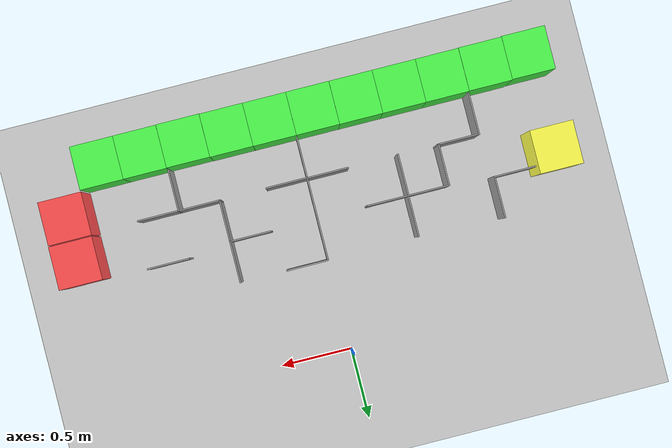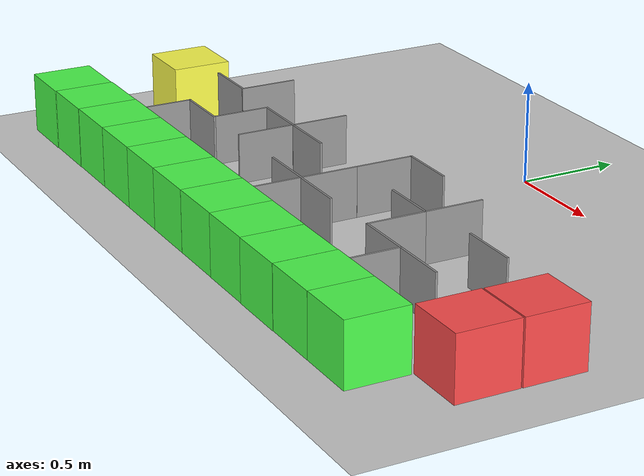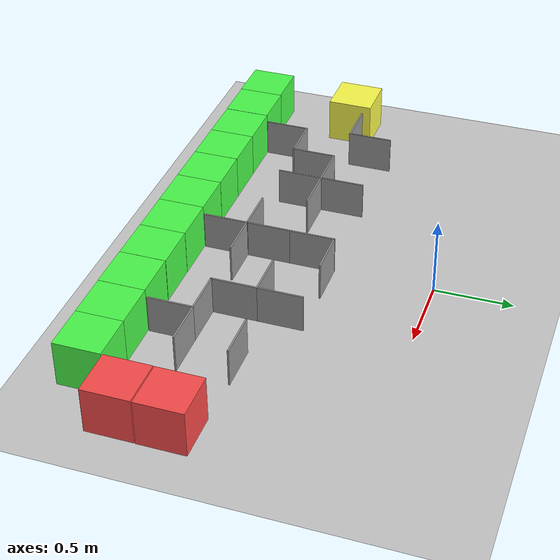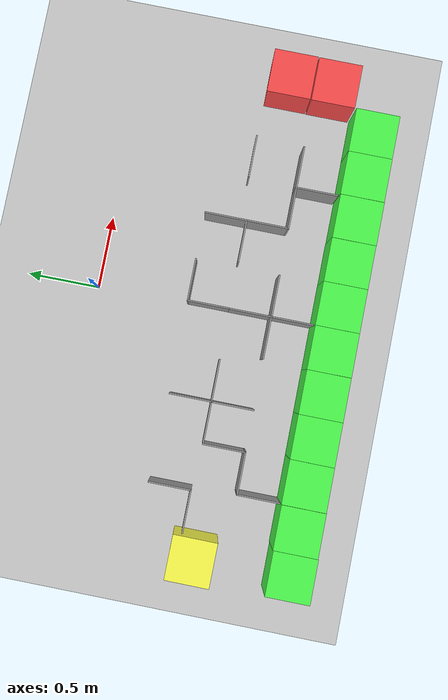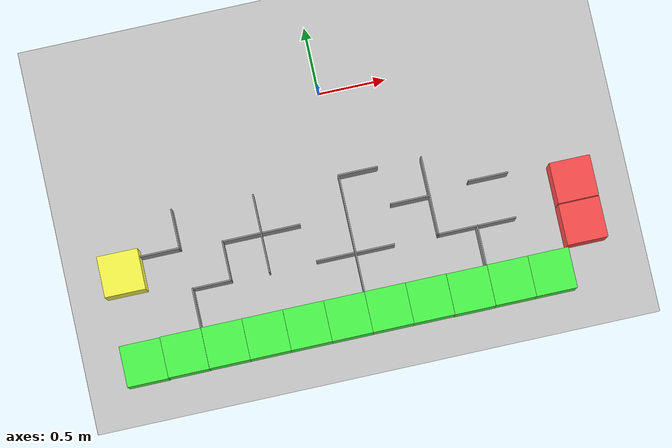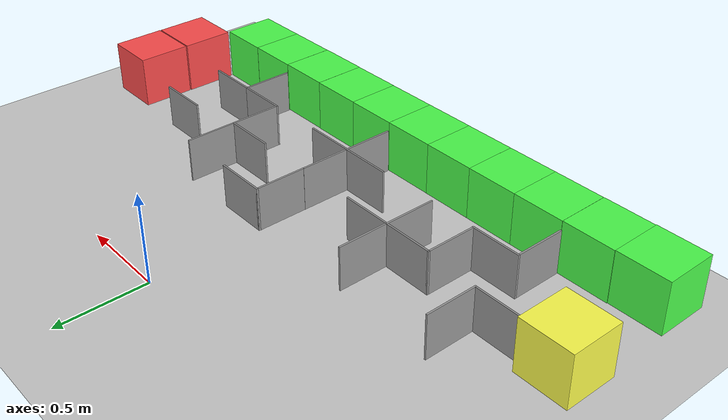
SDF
<sdf version="1.7">
 <world name="default">
  <model name="ground_plane">
   <static>1</static>
   <link name="link">
    <collision name="collision">
     <geometry><plane><normal>0 0 1</normal><size>100 100</size></plane></geometry>
     <surface><friction><ode><mu>100</mu><mu2>50</mu2></ode></friction></surface>
    </collision>
    <visual name="visual">
     <cast_shadows>0</cast_shadows>
     <geometry><plane><normal>0 0 1</normal><size>100 100</size></plane></geometry>
     <material>
      <script><uri>file://media/materials/scripts/gazebo.material</uri><name>Gazebo/Grey</name></script>
     </material>
    </visual>
   </link>
  </model>
  <model name="Box_Red_clone_6">
   <link name="link_0">
    <inertial>
     <mass>1</mass>
     <inertia>
      <ixx>0.166667</ixx>
      <ixy>0</ixy>
      <ixz>0</ixz>
      <iyy>0.166667</iyy>
      <iyz>0</iyz>
      <izz>0.166667</izz>
     </inertia>
    </inertial>
    <visual name="visual">
     <geometry><box><size>0.3 0.3 0.3</size></box></geometry>
     <material>
      <lighting>1</lighting>
      <script><uri>file://media/materials/scripts/gazebo.material</uri><name>Gazebo/Grey</name></script>
      <ambient>1 0.3 0.3 1</ambient>
      <diffuse>0.7 0.7 0.7 1</diffuse>
      <specular>0.01 0.01 0.01 1</specular>
      <emissive>0 0 0 1</emissive>
      <shader type="vertex"><normal_map>__default__</normal_map></shader>
     </material>
    </visual>
    <collision name="collision">
     <geometry><box><size>0.3 0.3 0.3</size></box></geometry>
     <surface>
      <friction>
       <ode><mu>1</mu><mu2>1</mu2><fdir1>0 0 0</fdir1><slip1>0</slip1><slip2>0</slip2></ode>
       <torsional>
        <coefficient>1</coefficient>
        <patch_radius>0</patch_radius>
        <surface_radius>0</surface_radius>
        <use_patch_radius>1</use_patch_radius>
        <ode><slip>0</slip></ode>
       </torsional>
      </friction>
      <bounce><restitution_coefficient>0</restitution_coefficient><threshold>1e+06</threshold></bounce>
      <contact>
       <collide_without_contact>0</collide_without_contact>
       <collide_without_contact_bitmask>1</collide_without_contact_bitmask>
       <collide_bitmask>1</collide_bitmask>
       <ode>
        <soft_cfm>0</soft_cfm>
        <soft_erp>0.2</soft_erp>
        <kp>1e+13</kp>
        <kd>1</kd>
        <max_vel>0.01</max_vel>
        <min_depth>0</min_depth>
       </ode>
       <bullet>
        <split_impulse>1</split_impulse>
        <split_impulse_penetration_threshold>-0.01</split_impulse_penetration_threshold>
        <soft_cfm>0</soft_cfm>
        <soft_erp>0.2</soft_erp>
        <kp>1e+13</kp>
        <kd>1</kd>
       </bullet>
      </contact>
     </surface>
    </collision>
   </link>
   <static>0</static>
   <pose>1.65902 -1.04031 0.15 0 -0 2.8e-05</pose>
  </model>
  <model name="Box_Red_clone_7">
   <link name="link_0">
    <inertial>
     <mass>1</mass>
     <inertia>
      <ixx>0.166667</ixx>
      <ixy>0</ixy>
      <ixz>0</ixz>
      <iyy>0.166667</iyy>
      <iyz>0</iyz>
      <izz>0.166667</izz>
     </inertia>
    </inertial>
    <visual name="visual">
     <geometry><box><size>0.3 0.3 0.3</size></box></geometry>
     <material>
      <lighting>1</lighting>
      <script><uri>file://media/materials/scripts/gazebo.material</uri><name>Gazebo/Grey</name></script>
      <ambient>1 0.3 0.3 1</ambient>
      <diffuse>0.7 0.7 0.7 1</diffuse>
      <specular>0.01 0.01 0.01 1</specular>
      <emissive>0 0 0 1</emissive>
      <shader type="vertex"><normal_map>__default__</normal_map></shader>
     </material>
    </visual>
    <collision name="collision">
     <geometry><box><size>0.3 0.3 0.3</size></box></geometry>
     <surface>
      <friction>
       <ode><mu>1</mu><mu2>1</mu2><fdir1>0 0 0</fdir1><slip1>0</slip1><slip2>0</slip2></ode>
       <torsional>
        <coefficient>1</coefficient>
        <patch_radius>0</patch_radius>
        <surface_radius>0</surface_radius>
        <use_patch_radius>1</use_patch_radius>
        <ode><slip>0</slip></ode>
       </torsional>
      </friction>
      <bounce><restitution_coefficient>0</restitution_coefficient><threshold>1e+06</threshold></bounce>
      <contact>
       <collide_without_contact>0</collide_without_contact>
       <collide_without_contact_bitmask>1</collide_without_contact_bitmask>
       <collide_bitmask>1</collide_bitmask>
       <ode>
        <soft_cfm>0</soft_cfm>
        <soft_erp>0.2</soft_erp>
        <kp>1e+13</kp>
        <kd>1</kd>
        <max_vel>0.01</max_vel>
        <min_depth>0</min_depth>
       </ode>
       <bullet>
        <split_impulse>1</split_impulse>
        <split_impulse_penetration_threshold>-0.01</split_impulse_penetration_threshold>
        <soft_cfm>0</soft_cfm>
        <soft_erp>0.2</soft_erp>
        <kp>1e+13</kp>
        <kd>1</kd>
       </bullet>
      </contact>
     </surface>
    </collision>
   </link>
   <static>0</static>
   <pose>1.65728 -1.34759 0.15 0 -0 3.8e-05</pose>
  </model>
  <model name="Box_Green">
   <link name="link_0">
    <inertial>
     <mass>1</mass>
     <inertia>
      <ixx>0.166667</ixx>
      <ixy>0</ixy>
      <ixz>0</ixz>
      <iyy>0.166667</iyy>
      <iyz>0</iyz>
      <izz>0.166667</izz>
     </inertia>
    </inertial>
    <visual name="visual">
     <geometry><box><size>0.3 0.3 0.3</size></box></geometry>
     <material>
      <lighting>1</lighting>
      <script><uri>file://media/materials/scripts/gazebo.material</uri><name>Gazebo/Grey</name></script>
      <ambient>0.3 1 0.3 1</ambient>
      <diffuse>0.7 0.7 0.7 1</diffuse>
      <specular>0.01 0.01 0.01 1</specular>
      <emissive>0 0 0 1</emissive>
      <shader type="vertex"><normal_map>__default__</normal_map></shader>
     </material>
    </visual>
    <collision name="collision">
     <geometry><box><size>0.3 0.3 0.3</size></box></geometry>
     <surface>
      <friction>
       <ode><mu>1</mu><mu2>1</mu2><fdir1>0 0 0</fdir1><slip1>0</slip1><slip2>0</slip2></ode>
       <torsional>
        <coefficient>1</coefficient>
        <patch_radius>0</patch_radius>
        <surface_radius>0</surface_radius>
        <use_patch_radius>1</use_patch_radius>
        <ode><slip>0</slip></ode>
       </torsional>
      </friction>
      <bounce><restitution_coefficient>0</restitution_coefficient><threshold>1e+06</threshold></bounce>
      <contact>
       <collide_without_contact>0</collide_without_contact>
       <collide_without_contact_bitmask>1</collide_without_contact_bitmask>
       <collide_bitmask>1</collide_bitmask>
       <ode>
        <soft_cfm>0</soft_cfm>
        <soft_erp>0.2</soft_erp>
        <kp>1e+13</kp>
        <kd>1</kd>
        <max_vel>0.01</max_vel>
        <min_depth>0</min_depth>
       </ode>
       <bullet>
        <split_impulse>1</split_impulse>
        <split_impulse_penetration_threshold>-0.01</split_impulse_penetration_threshold>
        <soft_cfm>0</soft_cfm>
        <soft_erp>0.2</soft_erp>
        <kp>1e+13</kp>
        <kd>1</kd>
       </bullet>
      </contact>
     </surface>
    </collision>
   </link>
   <static>0</static>
   <pose>1.36008 -1.65861 0.15 0 -0 -0.000208</pose>
  </model>
  <model name="Box_Green_clone">
   <link name="link_0">
    <inertial>
     <mass>1</mass>
     <inertia>
      <ixx>0.166667</ixx>
      <ixy>0</ixy>
      <ixz>0</ixz>
      <iyy>0.166667</iyy>
      <iyz>0</iyz>
      <izz>0.166667</izz>
     </inertia>
    </inertial>
    <visual name="visual">
     <geometry><box><size>0.3 0.3 0.3</size></box></geometry>
     <material>
      <lighting>1</lighting>
      <script><uri>file://media/materials/scripts/gazebo.material</uri><name>Gazebo/Grey</name></script>
      <ambient>0.3 1 0.3 1</ambient>
      <diffuse>0.7 0.7 0.7 1</diffuse>
      <specular>0.01 0.01 0.01 1</specular>
      <emissive>0 0 0 1</emissive>
      <shader type="vertex"><normal_map>__default__</normal_map></shader>
     </material>
    </visual>
    <collision name="collision">
     <geometry><box><size>0.3 0.3 0.3</size></box></geometry>
     <surface>
      <friction>
       <ode><mu>1</mu><mu2>1</mu2><fdir1>0 0 0</fdir1><slip1>0</slip1><slip2>0</slip2></ode>
       <torsional>
        <coefficient>1</coefficient>
        <patch_radius>0</patch_radius>
        <surface_radius>0</surface_radius>
        <use_patch_radius>1</use_patch_radius>
        <ode><slip>0</slip></ode>
       </torsional>
      </friction>
      <bounce><restitution_coefficient>0</restitution_coefficient><threshold>1e+06</threshold></bounce>
      <contact>
       <collide_without_contact>0</collide_without_contact>
       <collide_without_contact_bitmask>1</collide_without_contact_bitmask>
       <collide_bitmask>1</collide_bitmask>
       <ode>
        <soft_cfm>0</soft_cfm>
        <soft_erp>0.2</soft_erp>
        <kp>1e+13</kp>
        <kd>1</kd>
        <max_vel>0.01</max_vel>
        <min_depth>0</min_depth>
       </ode>
       <bullet>
        <split_impulse>1</split_impulse>
        <split_impulse_penetration_threshold>-0.01</split_impulse_penetration_threshold>
        <soft_cfm>0</soft_cfm>
        <soft_erp>0.2</soft_erp>
        <kp>1e+13</kp>
        <kd>1</kd>
       </bullet>
      </contact>
     </surface>
    </collision>
   </link>
   <static>0</static>
   <pose>1.06007 -1.65905 0.15 0 -0 -0.000217</pose>
  </model>
  <model name="Box_Green_clone_0">
   <link name="link_0">
    <inertial>
     <mass>1</mass>
     <inertia>
      <ixx>0.166667</ixx>
      <ixy>0</ixy>
      <ixz>0</ixz>
      <iyy>0.166667</iyy>
      <iyz>0</iyz>
      <izz>0.166667</izz>
     </inertia>
    </inertial>
    <visual name="visual">
     <geometry><box><size>0.3 0.3 0.3</size></box></geometry>
     <material>
      <lighting>1</lighting>
      <script><uri>file://media/materials/scripts/gazebo.material</uri><name>Gazebo/Grey</name></script>
      <ambient>0.3 1 0.3 1</ambient>
      <diffuse>0.7 0.7 0.7 1</diffuse>
      <specular>0.01 0.01 0.01 1</specular>
      <emissive>0 0 0 1</emissive>
      <shader type="vertex"><normal_map>__default__</normal_map></shader>
     </material>
    </visual>
    <collision name="collision">
     <geometry><box><size>0.3 0.3 0.3</size></box></geometry>
     <surface>
      <friction>
       <ode><mu>1</mu><mu2>1</mu2><fdir1>0 0 0</fdir1><slip1>0</slip1><slip2>0</slip2></ode>
       <torsional>
        <coefficient>1</coefficient>
        <patch_radius>0</patch_radius>
        <surface_radius>0</surface_radius>
        <use_patch_radius>1</use_patch_radius>
        <ode><slip>0</slip></ode>
       </torsional>
      </friction>
      <bounce><restitution_coefficient>0</restitution_coefficient><threshold>1e+06</threshold></bounce>
      <contact>
       <collide_without_contact>0</collide_without_contact>
       <collide_without_contact_bitmask>1</collide_without_contact_bitmask>
       <collide_bitmask>1</collide_bitmask>
       <ode>
        <soft_cfm>0</soft_cfm>
        <soft_erp>0.2</soft_erp>
        <kp>1e+13</kp>
        <kd>1</kd>
        <max_vel>0.01</max_vel>
        <min_depth>0</min_depth>
       </ode>
       <bullet>
        <split_impulse>1</split_impulse>
        <split_impulse_penetration_threshold>-0.01</split_impulse_penetration_threshold>
        <soft_cfm>0</soft_cfm>
        <soft_erp>0.2</soft_erp>
        <kp>1e+13</kp>
        <kd>1</kd>
       </bullet>
      </contact>
     </surface>
    </collision>
   </link>
   <static>0</static>
   <pose>0.759846 -1.66047 0.15 0 -0 -0.001702</pose>
  </model>
  <model name="Box_Green_clone_1">
   <link name="link_0">
    <inertial>
     <mass>1</mass>
     <inertia>
      <ixx>0.166667</ixx>
      <ixy>0</ixy>
      <ixz>0</ixz>
      <iyy>0.166667</iyy>
      <iyz>0</iyz>
      <izz>0.166667</izz>
     </inertia>
    </inertial>
    <visual name="visual">
     <geometry><box><size>0.3 0.3 0.3</size></box></geometry>
     <material>
      <lighting>1</lighting>
      <script><uri>file://media/materials/scripts/gazebo.material</uri><name>Gazebo/Grey</name></script>
      <ambient>0.3 1 0.3 1</ambient>
      <diffuse>0.7 0.7 0.7 1</diffuse>
      <specular>0.01 0.01 0.01 1</specular>
      <emissive>0 0 0 1</emissive>
      <shader type="vertex"><normal_map>__default__</normal_map></shader>
     </material>
    </visual>
    <collision name="collision">
     <geometry><box><size>0.3 0.3 0.3</size></box></geometry>
     <surface>
      <friction>
       <ode><mu>1</mu><mu2>1</mu2><fdir1>0 0 0</fdir1><slip1>0</slip1><slip2>0</slip2></ode>
       <torsional>
        <coefficient>1</coefficient>
        <patch_radius>0</patch_radius>
        <surface_radius>0</surface_radius>
        <use_patch_radius>1</use_patch_radius>
        <ode><slip>0</slip></ode>
       </torsional>
      </friction>
      <bounce><restitution_coefficient>0</restitution_coefficient><threshold>1e+06</threshold></bounce>
      <contact>
       <collide_without_contact>0</collide_without_contact>
       <collide_without_contact_bitmask>1</collide_without_contact_bitmask>
       <collide_bitmask>1</collide_bitmask>
       <ode>
        <soft_cfm>0</soft_cfm>
        <soft_erp>0.2</soft_erp>
        <kp>1e+13</kp>
        <kd>1</kd>
        <max_vel>0.01</max_vel>
        <min_depth>0</min_depth>
       </ode>
       <bullet>
        <split_impulse>1</split_impulse>
        <split_impulse_penetration_threshold>-0.01</split_impulse_penetration_threshold>
        <soft_cfm>0</soft_cfm>
        <soft_erp>0.2</soft_erp>
        <kp>1e+13</kp>
        <kd>1</kd>
       </bullet>
      </contact>
     </surface>
    </collision>
   </link>
   <static>0</static>
   <pose>0.459596 -1.6585 0.15 0 -0 -4.3e-05</pose>
  </model>
  <model name="Box_Green_clone_2">
   <link name="link_0">
    <inertial>
     <mass>1</mass>
     <inertia>
      <ixx>0.166667</ixx>
      <ixy>0</ixy>
      <ixz>0</ixz>
      <iyy>0.166667</iyy>
      <iyz>0</iyz>
      <izz>0.166667</izz>
     </inertia>
    </inertial>
    <visual name="visual">
     <geometry><box><size>0.3 0.3 0.3</size></box></geometry>
     <material>
      <lighting>1</lighting>
      <script><uri>file://media/materials/scripts/gazebo.material</uri><name>Gazebo/Grey</name></script>
      <ambient>0.3 1 0.3 1</ambient>
      <diffuse>0.7 0.7 0.7 1</diffuse>
      <specular>0.01 0.01 0.01 1</specular>
      <emissive>0 0 0 1</emissive>
      <shader type="vertex"><normal_map>__default__</normal_map></shader>
     </material>
    </visual>
    <collision name="collision">
     <geometry><box><size>0.3 0.3 0.3</size></box></geometry>
     <surface>
      <friction>
       <ode><mu>1</mu><mu2>1</mu2><fdir1>0 0 0</fdir1><slip1>0</slip1><slip2>0</slip2></ode>
       <torsional>
        <coefficient>1</coefficient>
        <patch_radius>0</patch_radius>
        <surface_radius>0</surface_radius>
        <use_patch_radius>1</use_patch_radius>
        <ode><slip>0</slip></ode>
       </torsional>
      </friction>
      <bounce><restitution_coefficient>0</restitution_coefficient><threshold>1e+06</threshold></bounce>
      <contact>
       <collide_without_contact>0</collide_without_contact>
       <collide_without_contact_bitmask>1</collide_without_contact_bitmask>
       <collide_bitmask>1</collide_bitmask>
       <ode>
        <soft_cfm>0</soft_cfm>
        <soft_erp>0.2</soft_erp>
        <kp>1e+13</kp>
        <kd>1</kd>
        <max_vel>0.01</max_vel>
        <min_depth>0</min_depth>
       </ode>
       <bullet>
        <split_impulse>1</split_impulse>
        <split_impulse_penetration_threshold>-0.01</split_impulse_penetration_threshold>
        <soft_cfm>0</soft_cfm>
        <soft_erp>0.2</soft_erp>
        <kp>1e+13</kp>
        <kd>1</kd>
       </bullet>
      </contact>
     </surface>
    </collision>
   </link>
   <static>0</static>
   <pose>0.159573 -1.6577 0.15 0 -0 8.4e-05</pose>
  </model>
  <model name="Box_Green_clone_3">
   <link name="link_0">
    <inertial>
     <mass>1</mass>
     <inertia>
      <ixx>0.166667</ixx>
      <ixy>0</ixy>
      <ixz>0</ixz>
      <iyy>0.166667</iyy>
      <iyz>0</iyz>
      <izz>0.166667</izz>
     </inertia>
    </inertial>
    <visual name="visual">
     <geometry><box><size>0.3 0.3 0.3</size></box></geometry>
     <material>
      <lighting>1</lighting>
      <script><uri>file://media/materials/scripts/gazebo.material</uri><name>Gazebo/Grey</name></script>
      <ambient>0.3 1 0.3 1</ambient>
      <diffuse>0.7 0.7 0.7 1</diffuse>
      <specular>0.01 0.01 0.01 1</specular>
      <emissive>0 0 0 1</emissive>
      <shader type="vertex"><normal_map>__default__</normal_map></shader>
     </material>
    </visual>
    <collision name="collision">
     <geometry><box><size>0.3 0.3 0.3</size></box></geometry>
     <surface>
      <friction>
       <ode><mu>1</mu><mu2>1</mu2><fdir1>0 0 0</fdir1><slip1>0</slip1><slip2>0</slip2></ode>
       <torsional>
        <coefficient>1</coefficient>
        <patch_radius>0</patch_radius>
        <surface_radius>0</surface_radius>
        <use_patch_radius>1</use_patch_radius>
        <ode><slip>0</slip></ode>
       </torsional>
      </friction>
      <bounce><restitution_coefficient>0</restitution_coefficient><threshold>1e+06</threshold></bounce>
      <contact>
       <collide_without_contact>0</collide_without_contact>
       <collide_without_contact_bitmask>1</collide_without_contact_bitmask>
       <collide_bitmask>1</collide_bitmask>
       <ode>
        <soft_cfm>0</soft_cfm>
        <soft_erp>0.2</soft_erp>
        <kp>1e+13</kp>
        <kd>1</kd>
        <max_vel>0.01</max_vel>
        <min_depth>0</min_depth>
       </ode>
       <bullet>
        <split_impulse>1</split_impulse>
        <split_impulse_penetration_threshold>-0.01</split_impulse_penetration_threshold>
        <soft_cfm>0</soft_cfm>
        <soft_erp>0.2</soft_erp>
        <kp>1e+13</kp>
        <kd>1</kd>
       </bullet>
      </contact>
     </surface>
    </collision>
   </link>
   <static>0</static>
   <pose>-0.140486 -1.65805 0.15 0 -0 0.000451</pose>
  </model>
  <model name="Box_Green_clone_4">
   <link name="link_0">
    <inertial>
     <mass>1</mass>
     <inertia>
      <ixx>0.166667</ixx>
      <ixy>0</ixy>
      <ixz>0</ixz>
      <iyy>0.166667</iyy>
      <iyz>0</iyz>
      <izz>0.166667</izz>
     </inertia>
    </inertial>
    <visual name="visual">
     <geometry><box><size>0.3 0.3 0.3</size></box></geometry>
     <material>
      <lighting>1</lighting>
      <script><uri>file://media/materials/scripts/gazebo.material</uri><name>Gazebo/Grey</name></script>
      <ambient>0.3 1 0.3 1</ambient>
      <diffuse>0.7 0.7 0.7 1</diffuse>
      <specular>0.01 0.01 0.01 1</specular>
      <emissive>0 0 0 1</emissive>
      <shader type="vertex"><normal_map>__default__</normal_map></shader>
     </material>
    </visual>
    <collision name="collision">
     <geometry><box><size>0.3 0.3 0.3</size></box></geometry>
     <surface>
      <friction>
       <ode><mu>1</mu><mu2>1</mu2><fdir1>0 0 0</fdir1><slip1>0</slip1><slip2>0</slip2></ode>
       <torsional>
        <coefficient>1</coefficient>
        <patch_radius>0</patch_radius>
        <surface_radius>0</surface_radius>
        <use_patch_radius>1</use_patch_radius>
        <ode><slip>0</slip></ode>
       </torsional>
      </friction>
      <bounce><restitution_coefficient>0</restitution_coefficient><threshold>1e+06</threshold></bounce>
      <contact>
       <collide_without_contact>0</collide_without_contact>
       <collide_without_contact_bitmask>1</collide_without_contact_bitmask>
       <collide_bitmask>1</collide_bitmask>
       <ode>
        <soft_cfm>0</soft_cfm>
        <soft_erp>0.2</soft_erp>
        <kp>1e+13</kp>
        <kd>1</kd>
        <max_vel>0.01</max_vel>
        <min_depth>0</min_depth>
       </ode>
       <bullet>
        <split_impulse>1</split_impulse>
        <split_impulse_penetration_threshold>-0.01</split_impulse_penetration_threshold>
        <soft_cfm>0</soft_cfm>
        <soft_erp>0.2</soft_erp>
        <kp>1e+13</kp>
        <kd>1</kd>
       </bullet>
      </contact>
     </surface>
    </collision>
   </link>
   <static>0</static>
   <pose>-0.440564 -1.65767 0.15 0 -0 1e-05</pose>
  </model>
  <model name="Box_Green_clone_5">
   <link name="link_0">
    <inertial>
     <mass>1</mass>
     <inertia>
      <ixx>0.166667</ixx>
      <ixy>0</ixy>
      <ixz>0</ixz>
      <iyy>0.166667</iyy>
      <iyz>0</iyz>
      <izz>0.166667</izz>
     </inertia>
    </inertial>
    <visual name="visual">
     <geometry><box><size>0.3 0.3 0.3</size></box></geometry>
     <material>
      <lighting>1</lighting>
      <script><uri>file://media/materials/scripts/gazebo.material</uri><name>Gazebo/Grey</name></script>
      <ambient>0.3 1 0.3 1</ambient>
      <diffuse>0.7 0.7 0.7 1</diffuse>
      <specular>0.01 0.01 0.01 1</specular>
      <emissive>0 0 0 1</emissive>
      <shader type="vertex"><normal_map>__default__</normal_map></shader>
     </material>
    </visual>
    <collision name="collision">
     <geometry><box><size>0.3 0.3 0.3</size></box></geometry>
     <surface>
      <friction>
       <ode><mu>1</mu><mu2>1</mu2><fdir1>0 0 0</fdir1><slip1>0</slip1><slip2>0</slip2></ode>
       <torsional>
        <coefficient>1</coefficient>
        <patch_radius>0</patch_radius>
        <surface_radius>0</surface_radius>
        <use_patch_radius>1</use_patch_radius>
        <ode><slip>0</slip></ode>
       </torsional>
      </friction>
      <bounce><restitution_coefficient>0</restitution_coefficient><threshold>1e+06</threshold></bounce>
      <contact>
       <collide_without_contact>0</collide_without_contact>
       <collide_without_contact_bitmask>1</collide_without_contact_bitmask>
       <collide_bitmask>1</collide_bitmask>
       <ode>
        <soft_cfm>0</soft_cfm>
        <soft_erp>0.2</soft_erp>
        <kp>1e+13</kp>
        <kd>1</kd>
        <max_vel>0.01</max_vel>
        <min_depth>0</min_depth>
       </ode>
       <bullet>
        <split_impulse>1</split_impulse>
        <split_impulse_penetration_threshold>-0.01</split_impulse_penetration_threshold>
        <soft_cfm>0</soft_cfm>
        <soft_erp>0.2</soft_erp>
        <kp>1e+13</kp>
        <kd>1</kd>
       </bullet>
      </contact>
     </surface>
    </collision>
   </link>
   <static>0</static>
   <pose>-0.740618 -1.65773 0.15 0 -0 0.000345</pose>
  </model>
  <model name="Box_Green_clone_6">
   <link name="link_0">
    <inertial>
     <mass>1</mass>
     <inertia>
      <ixx>0.166667</ixx>
      <ixy>0</ixy>
      <ixz>0</ixz>
      <iyy>0.166667</iyy>
      <iyz>0</iyz>
      <izz>0.166667</izz>
     </inertia>
    </inertial>
    <visual name="visual">
     <geometry><box><size>0.3 0.3 0.3</size></box></geometry>
     <material>
      <lighting>1</lighting>
      <script><uri>file://media/materials/scripts/gazebo.material</uri><name>Gazebo/Grey</name></script>
      <ambient>0.3 1 0.3 1</ambient>
      <diffuse>0.7 0.7 0.7 1</diffuse>
      <specular>0.01 0.01 0.01 1</specular>
      <emissive>0 0 0 1</emissive>
      <shader type="vertex"><normal_map>__default__</normal_map></shader>
     </material>
    </visual>
    <collision name="collision">
     <geometry><box><size>0.3 0.3 0.3</size></box></geometry>
     <surface>
      <friction>
       <ode><mu>1</mu><mu2>1</mu2><fdir1>0 0 0</fdir1><slip1>0</slip1><slip2>0</slip2></ode>
       <torsional>
        <coefficient>1</coefficient>
        <patch_radius>0</patch_radius>
        <surface_radius>0</surface_radius>
        <use_patch_radius>1</use_patch_radius>
        <ode><slip>0</slip></ode>
       </torsional>
      </friction>
      <bounce><restitution_coefficient>0</restitution_coefficient><threshold>1e+06</threshold></bounce>
      <contact>
       <collide_without_contact>0</collide_without_contact>
       <collide_without_contact_bitmask>1</collide_without_contact_bitmask>
       <collide_bitmask>1</collide_bitmask>
       <ode>
        <soft_cfm>0</soft_cfm>
        <soft_erp>0.2</soft_erp>
        <kp>1e+13</kp>
        <kd>1</kd>
        <max_vel>0.01</max_vel>
        <min_depth>0</min_depth>
       </ode>
       <bullet>
        <split_impulse>1</split_impulse>
        <split_impulse_penetration_threshold>-0.01</split_impulse_penetration_threshold>
        <soft_cfm>0</soft_cfm>
        <soft_erp>0.2</soft_erp>
        <kp>1e+13</kp>
        <kd>1</kd>
       </bullet>
      </contact>
     </surface>
    </collision>
   </link>
   <static>0</static>
   <pose>-1.04062 -1.65808 0.15 0 -0 0.000344</pose>
  </model>
  <model name="Box_Green_clone_7">
   <link name="link_0">
    <inertial>
     <mass>1</mass>
     <inertia>
      <ixx>0.166667</ixx>
      <ixy>0</ixy>
      <ixz>0</ixz>
      <iyy>0.166667</iyy>
      <iyz>0</iyz>
      <izz>0.166667</izz>
     </inertia>
    </inertial>
    <visual name="visual">
     <geometry><box><size>0.3 0.3 0.3</size></box></geometry>
     <material>
      <lighting>1</lighting>
      <script><uri>file://media/materials/scripts/gazebo.material</uri><name>Gazebo/Grey</name></script>
      <ambient>0.3 1 0.3 1</ambient>
      <diffuse>0.7 0.7 0.7 1</diffuse>
      <specular>0.01 0.01 0.01 1</specular>
      <emissive>0 0 0 1</emissive>
      <shader type="vertex"><normal_map>__default__</normal_map></shader>
     </material>
    </visual>
    <collision name="collision">
     <geometry><box><size>0.3 0.3 0.3</size></box></geometry>
     <surface>
      <friction>
       <ode><mu>1</mu><mu2>1</mu2><fdir1>0 0 0</fdir1><slip1>0</slip1><slip2>0</slip2></ode>
       <torsional>
        <coefficient>1</coefficient>
        <patch_radius>0</patch_radius>
        <surface_radius>0</surface_radius>
        <use_patch_radius>1</use_patch_radius>
        <ode><slip>0</slip></ode>
       </torsional>
      </friction>
      <bounce><restitution_coefficient>0</restitution_coefficient><threshold>1e+06</threshold></bounce>
      <contact>
       <collide_without_contact>0</collide_without_contact>
       <collide_without_contact_bitmask>1</collide_without_contact_bitmask>
       <collide_bitmask>1</collide_bitmask>
       <ode>
        <soft_cfm>0</soft_cfm>
        <soft_erp>0.2</soft_erp>
        <kp>1e+13</kp>
        <kd>1</kd>
        <max_vel>0.01</max_vel>
        <min_depth>0</min_depth>
       </ode>
       <bullet>
        <split_impulse>1</split_impulse>
        <split_impulse_penetration_threshold>-0.01</split_impulse_penetration_threshold>
        <soft_cfm>0</soft_cfm>
        <soft_erp>0.2</soft_erp>
        <kp>1e+13</kp>
        <kd>1</kd>
       </bullet>
      </contact>
     </surface>
    </collision>
   </link>
   <static>0</static>
   <pose>-1.34114 -1.65973 0.15 -0 -0 -0.00019</pose>
  </model>
  <model name="Maze_L_RU">
   <pose>-1.36417 -0.767498 0 0 -0 0</pose>
   <link name="Wall_11">
    <collision name="Wall_11_Collision">
     <geometry><box><size>0.294 0.01 0.25</size></box></geometry>
     <pose>0 0 0.125 0 -0 0</pose>
    </collision>
    <visual name="Wall_11_Visual">
     <pose>0 0 0.125 0 -0 0</pose>
     <geometry><box><size>0.294 0.01 0.25</size></box></geometry>
     <material>
      <script><uri>file://media/materials/scripts/gazebo.material</uri><name>Gazebo/Grey</name></script>
      <ambient>1 1 1 1</ambient>
     </material>
     <meta><layer>0</layer></meta>
    </visual>
    <pose>0 -0.142 0 0 -0 0</pose>
   </link>
   <link name="Wall_12">
    <collision name="Wall_12_Collision">
     <geometry><box><size>0.294 0.01 0.25</size></box></geometry>
     <pose>0 0 0.125 0 -0 0</pose>
    </collision>
    <visual name="Wall_12_Visual">
     <pose>0 0 0.125 0 -0 0</pose>
     <geometry><box><size>0.294 0.01 0.25</size></box></geometry>
     <material>
      <script><uri>file://media/materials/scripts/gazebo.material</uri><name>Gazebo/Grey</name></script>
      <ambient>1 1 1 1</ambient>
     </material>
     <meta><layer>0</layer></meta>
    </visual>
    <pose>0.142 0 0 0 -0 1.5708</pose>
   </link>
   <static>1</static>
  </model>
  <model name="Maze_I_V_clone">
   <pose>1.06361 -0.883251 0 0 -0 0</pose>
   <link name="Wall_0">
    <collision name="Wall_0_Collision">
     <geometry><box><size>0.294 0.01 0.25</size></box></geometry>
     <pose>0 0 0.125 0 -0 0</pose>
    </collision>
    <visual name="Wall_0_Visual">
     <pose>0 0 0.125 0 -0 0</pose>
     <geometry><box><size>0.294 0.01 0.25</size></box></geometry>
     <material>
      <script><uri>file://media/materials/scripts/gazebo.material</uri><name>Gazebo/Grey</name></script>
      <ambient>1 1 1 1</ambient>
     </material>
     <meta><layer>0</layer></meta>
    </visual>
   </link>
   <static>1</static>
  </model>
  <model name="Maze_L_LB_clone_2">
   <pose>1.04986 -1.35673 0 0 -0 0</pose>
   <link name="Wall_0">
    <collision name="Wall_0_Collision">
     <geometry><box><size>0.294 0.01 0.25</size></box></geometry>
     <pose>0 0 0.125 0 -0 0</pose>
    </collision>
    <visual name="Wall_0_Visual">
     <pose>0 0 0.125 0 -0 0</pose>
     <geometry><box><size>0.294 0.01 0.25</size></box></geometry>
     <material>
      <script><uri>file://media/materials/scripts/gazebo.material</uri><name>Gazebo/Grey</name></script>
      <ambient>1 1 1 1</ambient>
     </material>
     <meta><layer>0</layer></meta>
    </visual>
    <pose>0 0.142 0 0 -0 0</pose>
   </link>
   <link name="Wall_2">
    <collision name="Wall_2_Collision">
     <geometry><box><size>0.294 0.01 0.25</size></box></geometry>
     <pose>0 0 0.125 0 -0 0</pose>
    </collision>
    <visual name="Wall_2_Visual">
     <pose>0 0 0.125 0 -0 0</pose>
     <geometry><box><size>0.294 0.01 0.25</size></box></geometry>
     <material>
      <script><uri>file://media/materials/scripts/gazebo.material</uri><name>Gazebo/Grey</name></script>
      <ambient>1 1 1 1</ambient>
     </material>
     <meta><layer>0</layer></meta>
    </visual>
    <pose>-0.142 0 0 0 0 -1.5708</pose>
   </link>
   <static>1</static>
  </model>
  <model name="Maze_L_RB_clone_2">
   <pose>0.763598 -1.0726 0 0 -0 0</pose>
   <link name="Wall_0">
    <collision name="Wall_0_Collision">
     <geometry><box><size>0.294 0.01 0.25</size></box></geometry>
     <pose>0 0 0.125 0 -0 0</pose>
    </collision>
    <visual name="Wall_0_Visual">
     <pose>0 0 0.125 0 -0 0</pose>
     <geometry><box><size>0.294 0.01 0.25</size></box></geometry>
     <material>
      <script><uri>file://media/materials/scripts/gazebo.material</uri><name>Gazebo/Grey</name></script>
      <ambient>1 1 1 1</ambient>
     </material>
     <meta><layer>0</layer></meta>
    </visual>
    <pose>0 -0.142 0 0 -0 0</pose>
   </link>
   <link name="Wall_2">
    <collision name="Wall_2_Collision">
     <geometry><box><size>0.294 0.01 0.25</size></box></geometry>
     <pose>0 0 0.125 0 -0 0</pose>
    </collision>
    <visual name="Wall_2_Visual">
     <pose>0 0 0.125 0 -0 0</pose>
     <geometry><box><size>0.294 0.01 0.25</size></box></geometry>
     <material>
      <script><uri>file://media/materials/scripts/gazebo.material</uri><name>Gazebo/Grey</name></script>
      <ambient>1 1 1 1</ambient>
     </material>
     <meta><layer>0</layer></meta>
    </visual>
    <pose>-0.142 0 0 0 -0 1.5708</pose>
   </link>
   <static>1</static>
  </model>
  <model name="Maze_L_RU_clone">
   <pose>0.479452 -0.784371 0 0 -0 0</pose>
   <link name="Wall_11">
    <collision name="Wall_11_Collision">
     <geometry><box><size>0.294 0.01 0.25</size></box></geometry>
     <pose>0 0 0.125 0 -0 0</pose>
    </collision>
    <visual name="Wall_11_Visual">
     <pose>0 0 0.125 0 -0 0</pose>
     <geometry><box><size>0.294 0.01 0.25</size></box></geometry>
     <material>
      <script><uri>file://media/materials/scripts/gazebo.material</uri><name>Gazebo/Grey</name></script>
      <ambient>1 1 1 1</ambient>
     </material>
     <meta><layer>0</layer></meta>
    </visual>
    <pose>0 -0.142 0 0 -0 0</pose>
   </link>
   <link name="Wall_12">
    <collision name="Wall_12_Collision">
     <geometry><box><size>0.294 0.01 0.25</size></box></geometry>
     <pose>0 0 0.125 0 -0 0</pose>
    </collision>
    <visual name="Wall_12_Visual">
     <pose>0 0 0.125 0 -0 0</pose>
     <geometry><box><size>0.294 0.01 0.25</size></box></geometry>
     <material>
      <script><uri>file://media/materials/scripts/gazebo.material</uri><name>Gazebo/Grey</name></script>
      <ambient>1 1 1 1</ambient>
     </material>
     <meta><layer>0</layer></meta>
    </visual>
    <pose>0.142 0 0 0 -0 1.5708</pose>
   </link>
   <static>1</static>
  </model>
  <model name="Maze_L_LU_clone_0">
   <pose>-0.131487 -1.3561 0 0 -0 0</pose>
   <link name="Wall_0">
    <collision name="Wall_0_Collision">
     <geometry><box><size>0.294 0.01 0.25</size></box></geometry>
     <pose>0 0 0.125 0 -0 0</pose>
    </collision>
    <visual name="Wall_0_Visual">
     <pose>0 0 0.125 0 -0 0</pose>
     <geometry><box><size>0.294 0.01 0.25</size></box></geometry>
     <material>
      <script><uri>file://media/materials/scripts/gazebo.material</uri><name>Gazebo/Grey</name></script>
      <ambient>1 1 1 1</ambient>
     </material>
     <meta><layer>0</layer></meta>
    </visual>
    <pose>0 0.142 0 0 -0 3.14159</pose>
   </link>
   <link name="Wall_2">
    <collision name="Wall_2_Collision">
     <geometry><box><size>0.294 0.01 0.25</size></box></geometry>
     <pose>0 0 0.125 0 -0 0</pose>
    </collision>
    <visual name="Wall_2_Visual">
     <pose>0 0 0.125 0 -0 0</pose>
     <geometry><box><size>0.294 0.01 0.25</size></box></geometry>
     <material>
      <script><uri>file://media/materials/scripts/gazebo.material</uri><name>Gazebo/Grey</name></script>
      <ambient>1 1 1 1</ambient>
     </material>
     <meta><layer>0</layer></meta>
    </visual>
    <pose>0.142 0 0 0 0 -1.5708</pose>
   </link>
   <static>1</static>
  </model>
  <model name="Maze_L_RB_clone_3">
   <pose>0.15218 -1.07427 0 0 -0 0</pose>
   <link name="Wall_0">
    <collision name="Wall_0_Collision">
     <geometry><box><size>0.294 0.01 0.25</size></box></geometry>
     <pose>0 0 0.125 0 -0 0</pose>
    </collision>
    <visual name="Wall_0_Visual">
     <pose>0 0 0.125 0 -0 0</pose>
     <geometry><box><size>0.294 0.01 0.25</size></box></geometry>
     <material>
      <script><uri>file://media/materials/scripts/gazebo.material</uri><name>Gazebo/Grey</name></script>
      <ambient>1 1 1 1</ambient>
     </material>
     <meta><layer>0</layer></meta>
    </visual>
    <pose>0 -0.142 0 0 -0 0</pose>
   </link>
   <link name="Wall_2">
    <collision name="Wall_2_Collision">
     <geometry><box><size>0.294 0.01 0.25</size></box></geometry>
     <pose>0 0 0.125 0 -0 0</pose>
    </collision>
    <visual name="Wall_2_Visual">
     <pose>0 0 0.125 0 -0 0</pose>
     <geometry><box><size>0.294 0.01 0.25</size></box></geometry>
     <material>
      <script><uri>file://media/materials/scripts/gazebo.material</uri><name>Gazebo/Grey</name></script>
      <ambient>1 1 1 1</ambient>
     </material>
     <meta><layer>0</layer></meta>
    </visual>
    <pose>-0.142 0 0 0 -0 1.5708</pose>
   </link>
   <static>1</static>
  </model>
  <model name="Maze_L_LB_clone_3">
   <pose>0.152592 -0.783376 0 0 -0 0</pose>
   <link name="Wall_0">
    <collision name="Wall_0_Collision">
     <geometry><box><size>0.294 0.01 0.25</size></box></geometry>
     <pose>0 0 0.125 0 -0 0</pose>
    </collision>
    <visual name="Wall_0_Visual">
     <pose>0 0 0.125 0 -0 0</pose>
     <geometry><box><size>0.294 0.01 0.25</size></box></geometry>
     <material>
      <script><uri>file://media/materials/scripts/gazebo.material</uri><name>Gazebo/Grey</name></script>
      <ambient>1 1 1 1</ambient>
     </material>
     <meta><layer>0</layer></meta>
    </visual>
    <pose>0 0.142 0 0 -0 0</pose>
   </link>
   <link name="Wall_2">
    <collision name="Wall_2_Collision">
     <geometry><box><size>0.294 0.01 0.25</size></box></geometry>
     <pose>0 0 0.125 0 -0 0</pose>
    </collision>
    <visual name="Wall_2_Visual">
     <pose>0 0 0.125 0 -0 0</pose>
     <geometry><box><size>0.294 0.01 0.25</size></box></geometry>
     <material>
      <script><uri>file://media/materials/scripts/gazebo.material</uri><name>Gazebo/Grey</name></script>
      <ambient>1 1 1 1</ambient>
     </material>
     <meta><layer>0</layer></meta>
    </visual>
    <pose>-0.142 0 0 0 0 -1.5708</pose>
   </link>
   <static>1</static>
  </model>
  <model name="Maze_L_LB_clone_4">
   <pose>-1.04983 -1.35853 0 0 -0 0</pose>
   <link name="Wall_0">
    <collision name="Wall_0_Collision">
     <geometry><box><size>0.294 0.01 0.25</size></box></geometry>
     <pose>0 0 0.125 0 -0 0</pose>
    </collision>
    <visual name="Wall_0_Visual">
     <pose>0 0 0.125 0 -0 0</pose>
     <geometry><box><size>0.294 0.01 0.25</size></box></geometry>
     <material>
      <script><uri>file://media/materials/scripts/gazebo.material</uri><name>Gazebo/Grey</name></script>
      <ambient>1 1 1 1</ambient>
     </material>
     <meta><layer>0</layer></meta>
    </visual>
    <pose>0 0.142 0 0 -0 0</pose>
   </link>
   <link name="Wall_2">
    <collision name="Wall_2_Collision">
     <geometry><box><size>0.294 0.01 0.25</size></box></geometry>
     <pose>0 0 0.125 0 -0 0</pose>
    </collision>
    <visual name="Wall_2_Visual">
     <pose>0 0 0.125 0 -0 0</pose>
     <geometry><box><size>0.294 0.01 0.25</size></box></geometry>
     <material>
      <script><uri>file://media/materials/scripts/gazebo.material</uri><name>Gazebo/Grey</name></script>
      <ambient>1 1 1 1</ambient>
     </material>
     <meta><layer>0</layer></meta>
    </visual>
    <pose>-0.142 0 0 0 0 -1.5708</pose>
   </link>
   <static>1</static>
  </model>
  <model name="Maze_L_LB_clone_5">
   <pose>-0.767205 -1.07204 0 0 -0 0</pose>
   <link name="Wall_0">
    <collision name="Wall_0_Collision">
     <geometry><box><size>0.294 0.01 0.25</size></box></geometry>
     <pose>0 0 0.125 0 -0 0</pose>
    </collision>
    <visual name="Wall_0_Visual">
     <pose>0 0 0.125 0 -0 0</pose>
     <geometry><box><size>0.294 0.01 0.25</size></box></geometry>
     <material>
      <script><uri>file://media/materials/scripts/gazebo.material</uri><name>Gazebo/Grey</name></script>
      <ambient>1 1 1 1</ambient>
     </material>
     <meta><layer>0</layer></meta>
    </visual>
    <pose>0 0.142 0 0 -0 0</pose>
   </link>
   <link name="Wall_2">
    <collision name="Wall_2_Collision">
     <geometry><box><size>0.294 0.01 0.25</size></box></geometry>
     <pose>0 0 0.125 0 -0 0</pose>
    </collision>
    <visual name="Wall_2_Visual">
     <pose>0 0 0.125 0 -0 0</pose>
     <geometry><box><size>0.294 0.01 0.25</size></box></geometry>
     <material>
      <script><uri>file://media/materials/scripts/gazebo.material</uri><name>Gazebo/Grey</name></script>
      <ambient>1 1 1 1</ambient>
     </material>
     <meta><layer>0</layer></meta>
    </visual>
    <pose>-0.142 0 0 0 0 -1.5708</pose>
   </link>
   <static>1</static>
  </model>
  <model name="Maze_L_RB_clone_4">
   <pose>-0.481784 -0.788673 0 0 -0 0</pose>
   <link name="Wall_0">
    <collision name="Wall_0_Collision">
     <geometry><box><size>0.294 0.01 0.25</size></box></geometry>
     <pose>0 0 0.125 0 -0 0</pose>
    </collision>
    <visual name="Wall_0_Visual">
     <pose>0 0 0.125 0 -0 0</pose>
     <geometry><box><size>0.294 0.01 0.25</size></box></geometry>
     <material>
      <script><uri>file://media/materials/scripts/gazebo.material</uri><name>Gazebo/Grey</name></script>
      <ambient>1 1 1 1</ambient>
     </material>
     <meta><layer>0</layer></meta>
    </visual>
    <pose>0 -0.142 0 0 -0 0</pose>
   </link>
   <link name="Wall_2">
    <collision name="Wall_2_Collision">
     <geometry><box><size>0.294 0.01 0.25</size></box></geometry>
     <pose>0 0 0.125 0 -0 0</pose>
    </collision>
    <visual name="Wall_2_Visual">
     <pose>0 0 0.125 0 -0 0</pose>
     <geometry><box><size>0.294 0.01 0.25</size></box></geometry>
     <material>
      <script><uri>file://media/materials/scripts/gazebo.material</uri><name>Gazebo/Grey</name></script>
      <ambient>1 1 1 1</ambient>
     </material>
     <meta><layer>0</layer></meta>
    </visual>
    <pose>-0.142 0 0 0 -0 1.5708</pose>
   </link>
   <static>1</static>
  </model>
  <model name="Maze_I_H_clone_7">
   <pose>-0.624759 -1.07457 0 0 -0 0</pose>
   <link name="Wall_0">
    <collision name="Wall_0_Collision">
     <geometry><box><size>0.294 0.01 0.25</size></box></geometry>
     <pose>0 0 0.125 0 -0 0</pose>
    </collision>
    <visual name="Wall_0_Visual">
     <pose>0 0 0.125 0 -0 0</pose>
     <geometry><box><size>0.294 0.01 0.25</size></box></geometry>
     <material>
      <script><uri>file://media/materials/scripts/gazebo.material</uri><name>Gazebo/Grey</name></script>
      <ambient>1 1 1 1</ambient>
     </material>
     <meta><layer>0</layer></meta>
    </visual>
    <pose>0 0 0 0 -0 1.5708</pose>
   </link>
   <static>1</static>
  </model>
  <model name="Box_Green_clone_7_clone">
   <link name="link_0">
    <inertial>
     <mass>1</mass>
     <inertia>
      <ixx>0.166667</ixx>
      <ixy>0</ixy>
      <ixz>0</ixz>
      <iyy>0.166667</iyy>
      <iyz>0</iyz>
      <izz>0.166667</izz>
     </inertia>
    </inertial>
    <visual name="visual">
     <geometry><box><size>0.3 0.3 0.3</size></box></geometry>
     <material>
      <lighting>1</lighting>
      <script><uri>file://media/materials/scripts/gazebo.material</uri><name>Gazebo/Grey</name></script>
      <ambient>0.3 1 0.3 1</ambient>
      <diffuse>0.7 0.7 0.7 1</diffuse>
      <specular>0.01 0.01 0.01 1</specular>
      <emissive>0 0 0 1</emissive>
      <shader type="vertex"><normal_map>__default__</normal_map></shader>
     </material>
    </visual>
    <collision name="collision">
     <geometry><box><size>0.3 0.3 0.3</size></box></geometry>
     <surface>
      <friction>
       <ode><mu>1</mu><mu2>1</mu2><fdir1>0 0 0</fdir1><slip1>0</slip1><slip2>0</slip2></ode>
       <torsional>
        <coefficient>1</coefficient>
        <patch_radius>0</patch_radius>
        <surface_radius>0</surface_radius>
        <use_patch_radius>1</use_patch_radius>
        <ode><slip>0</slip></ode>
       </torsional>
      </friction>
      <bounce><restitution_coefficient>0</restitution_coefficient><threshold>1e+06</threshold></bounce>
      <contact>
       <collide_without_contact>0</collide_without_contact>
       <collide_without_contact_bitmask>1</collide_without_contact_bitmask>
       <collide_bitmask>1</collide_bitmask>
       <ode>
        <soft_cfm>0</soft_cfm>
        <soft_erp>0.2</soft_erp>
        <kp>1e+13</kp>
        <kd>1</kd>
        <max_vel>0.01</max_vel>
        <min_depth>0</min_depth>
       </ode>
       <bullet>
        <split_impulse>1</split_impulse>
        <split_impulse_penetration_threshold>-0.01</split_impulse_penetration_threshold>
        <soft_cfm>0</soft_cfm>
        <soft_erp>0.2</soft_erp>
        <kp>1e+13</kp>
        <kd>1</kd>
       </bullet>
      </contact>
     </surface>
    </collision>
   </link>
   <static>0</static>
   <pose>-1.64115 -1.66334 0.15 0 0 -0.00019</pose>
  </model>
  <model name="Box_Yellow_clone_clone">
   <link name="link_0">
    <inertial>
     <mass>1</mass>
     <inertia>
      <ixx>0.166667</ixx>
      <ixy>0</ixy>
      <ixz>0</ixz>
      <iyy>0.166667</iyy>
      <iyz>0</iyz>
      <izz>0.166667</izz>
     </inertia>
    </inertial>
    <visual name="visual">
     <geometry><box><size>0.3 0.3 0.3</size></box></geometry>
     <material>
      <lighting>1</lighting>
      <script><uri>file://media/materials/scripts/gazebo.material</uri><name>Gazebo/Grey</name></script>
      <ambient>1 1 0.3 1</ambient>
      <diffuse>0.7 0.7 0.7 1</diffuse>
      <specular>0.01 0.01 0.01 1</specular>
      <emissive>0 0 0 1</emissive>
      <shader type="vertex"><normal_map>__default__</normal_map></shader>
     </material>
    </visual>
    <collision name="collision">
     <geometry><box><size>0.3 0.3 0.3</size></box></geometry>
     <surface>
      <friction>
       <ode><mu>1</mu><mu2>1</mu2><fdir1>0 0 0</fdir1><slip1>0</slip1><slip2>0</slip2></ode>
       <torsional>
        <coefficient>1</coefficient>
        <patch_radius>0</patch_radius>
        <surface_radius>0</surface_radius>
        <use_patch_radius>1</use_patch_radius>
        <ode><slip>0</slip></ode>
       </torsional>
      </friction>
      <bounce><restitution_coefficient>0</restitution_coefficient><threshold>1e+06</threshold></bounce>
      <contact>
       <collide_without_contact>0</collide_without_contact>
       <collide_without_contact_bitmask>1</collide_without_contact_bitmask>
       <collide_bitmask>1</collide_bitmask>
       <ode>
        <soft_cfm>0</soft_cfm>
        <soft_erp>0.2</soft_erp>
        <kp>1e+13</kp>
        <kd>1</kd>
        <max_vel>0.01</max_vel>
        <min_depth>0</min_depth>
       </ode>
       <bullet>
        <split_impulse>1</split_impulse>
        <split_impulse_penetration_threshold>-0.01</split_impulse_penetration_threshold>
        <soft_cfm>0</soft_cfm>
        <soft_erp>0.2</soft_erp>
        <kp>1e+13</kp>
        <kd>1</kd>
       </bullet>
      </contact>
     </surface>
    </collision>
   </link>
   <static>0</static>
   <pose>-1.66591 -1.00024 0.15 0 -0 -0.003091</pose>
  </model>
 </world>
</sdf>
